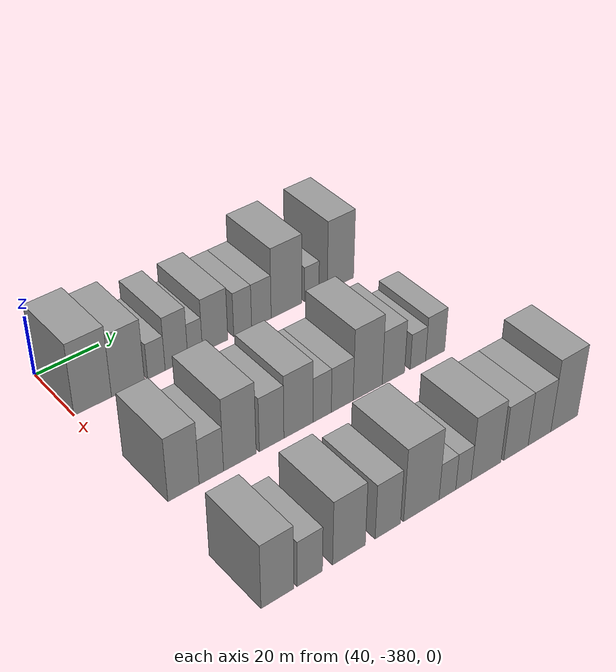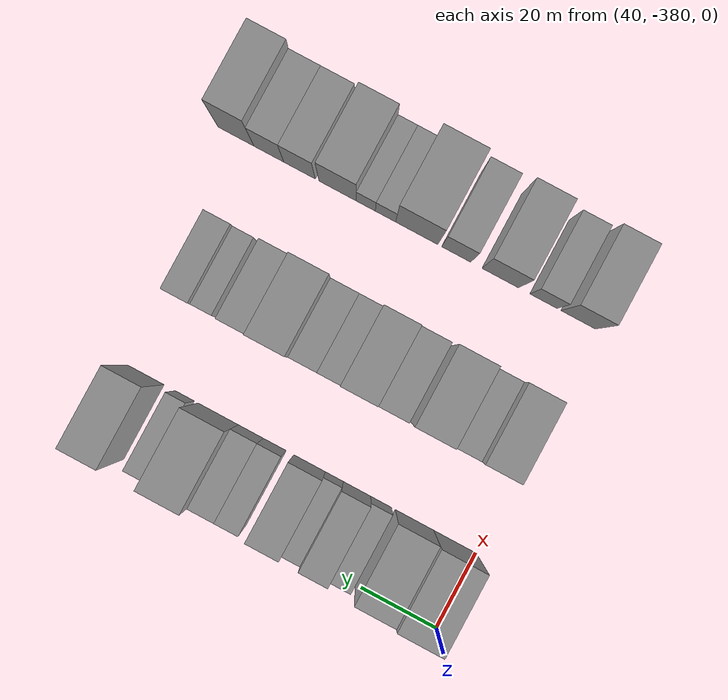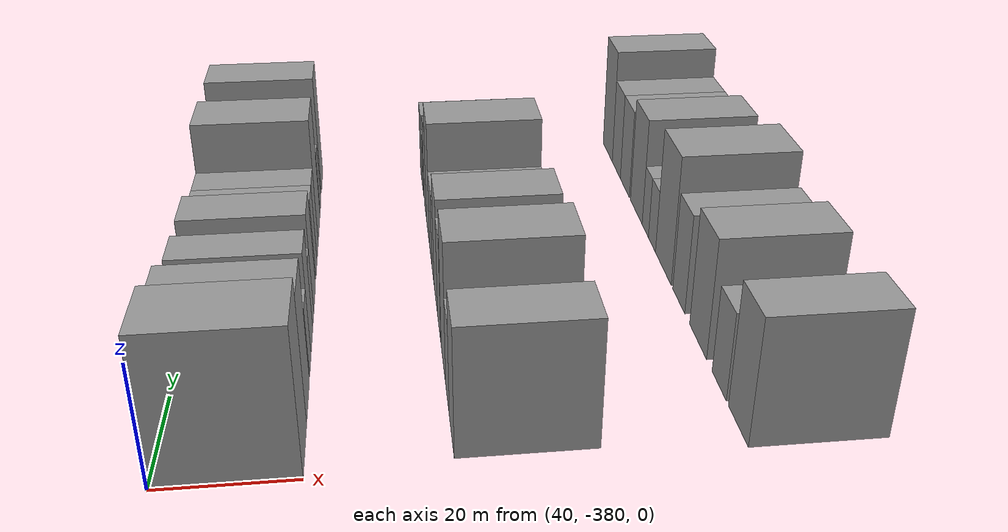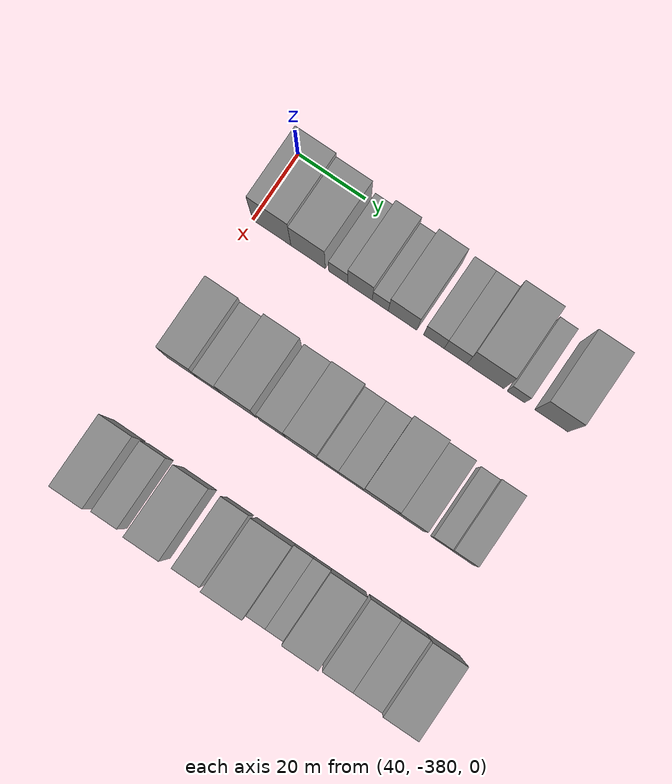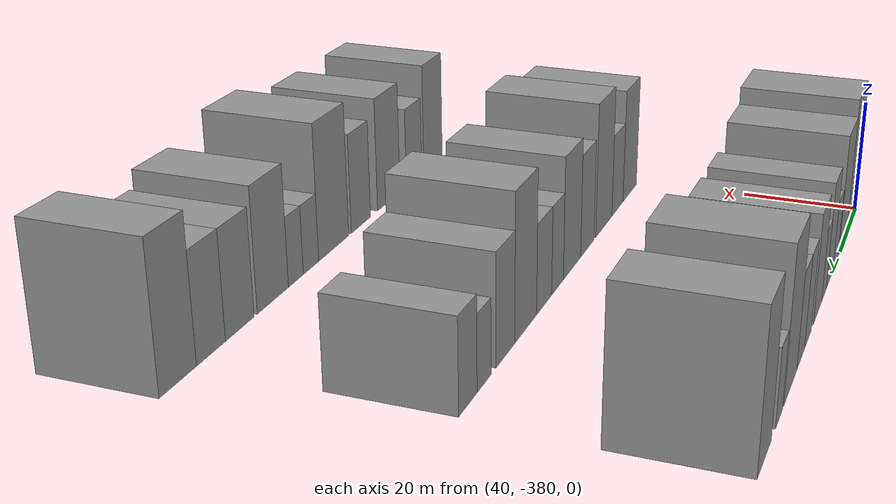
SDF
<sdf version="1.6">
 <world name="default">
  <model name="building_1">
   <static>1</static>
   <pose>50.0000 -374.2939 0 0.000000 0.000000 0.000000</pose>
   <link name="link">
    <pose>0 0 12.00 0 0 0</pose>
    <collision name="collision"><geometry><box><size>20.0000 11.4122 24.0000</size></box></geometry></collision>
    <visual name="visual">
     <cast_shadows>0</cast_shadows>
     <geometry><box><size>20.0000 11.4122 24.0000</size></box></geometry>
     <material>
      <script>
       <uri>model://grey_wall/materials/scripts</uri>
       <uri>model://grey_wall/materials/textures</uri>
       <name>vrc/grey_wall</name>
      </script>
     </material>
    </visual>
   </link>
  </model>
  <model name="building_2">
   <static>1</static>
   <pose>50.0000 -363.4568 0 0.000000 0.000000 0.000000</pose>
   <link name="link">
    <pose>0 0 10.50 0 0 0</pose>
    <collision name="collision"><geometry><box><size>20.0000 10.2619 21.0000</size></box></geometry></collision>
    <visual name="visual">
     <cast_shadows>0</cast_shadows>
     <geometry><box><size>20.0000 10.2619 21.0000</size></box></geometry>
     <material>
      <script>
       <uri>model://grey_wall/materials/scripts</uri>
       <uri>model://grey_wall/materials/textures</uri>
       <name>vrc/grey_wall</name>
      </script>
     </material>
    </visual>
   </link>
  </model>
  <model name="building_3">
   <static>1</static>
   <pose>50.0000 -354.5349 0 0.000000 0.000000 0.000000</pose>
   <link name="link">
    <pose>0 0 6.00 0 0 0</pose>
    <collision name="collision"><geometry><box><size>20.0000 5.5819 12.0000</size></box></geometry></collision>
    <visual name="visual">
     <cast_shadows>0</cast_shadows>
     <geometry><box><size>20.0000 5.5819 12.0000</size></box></geometry>
     <material>
      <script>
       <uri>model://grey_wall/materials/scripts</uri>
       <uri>model://grey_wall/materials/textures</uri>
       <name>vrc/grey_wall</name>
      </script>
     </material>
    </visual>
   </link>
  </model>
  <model name="building_4">
   <static>1</static>
   <pose>50.0000 -348.0788 0 0.000000 0.000000 0.000000</pose>
   <link name="link">
    <pose>0 0 9.00 0 0 0</pose>
    <collision name="collision"><geometry><box><size>20.0000 7.3304 18.0000</size></box></geometry></collision>
    <visual name="visual">
     <cast_shadows>0</cast_shadows>
     <geometry><box><size>20.0000 7.3304 18.0000</size></box></geometry>
     <material>
      <script>
       <uri>model://grey_wall/materials/scripts</uri>
       <uri>model://grey_wall/materials/textures</uri>
       <name>vrc/grey_wall</name>
      </script>
     </material>
    </visual>
   </link>
  </model>
  <model name="building_5">
   <static>1</static>
   <pose>50.0000 -342.0132 0 0.000000 0.000000 0.000000</pose>
   <link name="link">
    <pose>0 0 6.00 0 0 0</pose>
    <collision name="collision"><geometry><box><size>20.0000 4.8006 12.0000</size></box></geometry></collision>
    <visual name="visual">
     <cast_shadows>0</cast_shadows>
     <geometry><box><size>20.0000 4.8006 12.0000</size></box></geometry>
     <material>
      <script>
       <uri>model://grey_wall/materials/scripts</uri>
       <uri>model://grey_wall/materials/textures</uri>
       <name>vrc/grey_wall</name>
      </script>
     </material>
    </visual>
   </link>
  </model>
  <model name="building_6">
   <static>1</static>
   <pose>50.0000 -335.3827 0 0.000000 0.000000 0.000000</pose>
   <link name="link">
    <pose>0 0 9.00 0 0 0</pose>
    <collision name="collision"><geometry><box><size>20.0000 8.4605 18.0000</size></box></geometry></collision>
    <visual name="visual">
     <cast_shadows>0</cast_shadows>
     <geometry><box><size>20.0000 8.4605 18.0000</size></box></geometry>
     <material>
      <script>
       <uri>model://grey_wall/materials/scripts</uri>
       <uri>model://grey_wall/materials/textures</uri>
       <name>vrc/grey_wall</name>
      </script>
     </material>
    </visual>
   </link>
  </model>
  <model name="building_7">
   <static>1</static>
   <pose>50.0000 -326.1013 0 0.000000 0.000000 0.000000</pose>
   <link name="link">
    <pose>0 0 7.50 0 0 0</pose>
    <collision name="collision"><geometry><box><size>20.0000 6.1022 15.0000</size></box></geometry></collision>
    <visual name="visual">
     <cast_shadows>0</cast_shadows>
     <geometry><box><size>20.0000 6.1022 15.0000</size></box></geometry>
     <material>
      <script>
       <uri>model://grey_wall/materials/scripts</uri>
       <uri>model://grey_wall/materials/textures</uri>
       <name>vrc/grey_wall</name>
      </script>
     </material>
    </visual>
   </link>
  </model>
  <model name="building_8">
   <static>1</static>
   <pose>50.0000 -319.6761 0 0.000000 0.000000 0.000000</pose>
   <link name="link">
    <pose>0 0 7.50 0 0 0</pose>
    <collision name="collision"><geometry><box><size>20.0000 6.7484 15.0000</size></box></geometry></collision>
    <visual name="visual">
     <cast_shadows>0</cast_shadows>
     <geometry><box><size>20.0000 6.7484 15.0000</size></box></geometry>
     <material>
      <script>
       <uri>model://grey_wall/materials/scripts</uri>
       <uri>model://grey_wall/materials/textures</uri>
       <name>vrc/grey_wall</name>
      </script>
     </material>
    </visual>
   </link>
  </model>
  <model name="building_9">
   <static>1</static>
   <pose>50.0000 -310.8692 0 0.000000 0.000000 0.000000</pose>
   <link name="link">
    <pose>0 0 12.00 0 0 0</pose>
    <collision name="collision"><geometry><box><size>20.0000 10.8653 24.0000</size></box></geometry></collision>
    <visual name="visual">
     <cast_shadows>0</cast_shadows>
     <geometry><box><size>20.0000 10.8653 24.0000</size></box></geometry>
     <material>
      <script>
       <uri>model://grey_wall/materials/scripts</uri>
       <uri>model://grey_wall/materials/textures</uri>
       <name>vrc/grey_wall</name>
      </script>
     </material>
    </visual>
   </link>
  </model>
  <model name="building_10">
   <static>1</static>
   <pose>50.0000 -301.8621 0 0.000000 0.000000 0.000000</pose>
   <link name="link">
    <pose>0 0 6.00 0 0 0</pose>
    <collision name="collision"><geometry><box><size>20.0000 5.1489 12.0000</size></box></geometry></collision>
    <visual name="visual">
     <cast_shadows>0</cast_shadows>
     <geometry><box><size>20.0000 5.1489 12.0000</size></box></geometry>
     <material>
      <script>
       <uri>model://grey_wall/materials/scripts</uri>
       <uri>model://grey_wall/materials/textures</uri>
       <name>vrc/grey_wall</name>
      </script>
     </material>
    </visual>
   </link>
  </model>
  <model name="building_11">
   <static>1</static>
   <pose>50.0000 -291.4230 0 0.000000 0.000000 0.000000</pose>
   <link name="link">
    <pose>0 0 12.00 0 0 0</pose>
    <collision name="collision"><geometry><box><size>20.0000 9.7293 24.0000</size></box></geometry></collision>
    <visual name="visual">
     <cast_shadows>0</cast_shadows>
     <geometry><box><size>20.0000 9.7293 24.0000</size></box></geometry>
     <material>
      <script>
       <uri>model://grey_wall/materials/scripts</uri>
       <uri>model://grey_wall/materials/textures</uri>
       <name>vrc/grey_wall</name>
      </script>
     </material>
    </visual>
   </link>
  </model>
  <model name="building_87">
   <static>1</static>
   <pose>90.0000 -373.3936 0 0.000000 0.000000 0.000000</pose>
   <link name="link">
    <pose>0 0 10.50 0 0 0</pose>
    <collision name="collision"><geometry><box><size>20.0000 9.2129 21.0000</size></box></geometry></collision>
    <visual name="visual">
     <cast_shadows>0</cast_shadows>
     <geometry><box><size>20.0000 9.2129 21.0000</size></box></geometry>
     <material>
      <script>
       <uri>model://grey_wall/materials/scripts</uri>
       <uri>model://grey_wall/materials/textures</uri>
       <name>vrc/grey_wall</name>
      </script>
     </material>
    </visual>
   </link>
  </model>
  <model name="building_88">
   <static>1</static>
   <pose>90.0000 -365.1142 0 0.000000 0.000000 0.000000</pose>
   <link name="link">
    <pose>0 0 7.50 0 0 0</pose>
    <collision name="collision"><geometry><box><size>20.0000 7.3459 15.0000</size></box></geometry></collision>
    <visual name="visual">
     <cast_shadows>0</cast_shadows>
     <geometry><box><size>20.0000 7.3459 15.0000</size></box></geometry>
     <material>
      <script>
       <uri>model://grey_wall/materials/scripts</uri>
       <uri>model://grey_wall/materials/textures</uri>
       <name>vrc/grey_wall</name>
      </script>
     </material>
    </visual>
   </link>
  </model>
  <model name="building_89">
   <static>1</static>
   <pose>90.0000 -356.4322 0 0.000000 0.000000 0.000000</pose>
   <link name="link">
    <pose>0 0 12.00 0 0 0</pose>
    <collision name="collision"><geometry><box><size>20.0000 10.0182 24.0000</size></box></geometry></collision>
    <visual name="visual">
     <cast_shadows>0</cast_shadows>
     <geometry><box><size>20.0000 10.0182 24.0000</size></box></geometry>
     <material>
      <script>
       <uri>model://grey_wall/materials/scripts</uri>
       <uri>model://grey_wall/materials/textures</uri>
       <name>vrc/grey_wall</name>
      </script>
     </material>
    </visual>
   </link>
  </model>
  <model name="building_90">
   <static>1</static>
   <pose>90.0000 -346.5518 0 0.000000 0.000000 0.000000</pose>
   <link name="link">
    <pose>0 0 9.00 0 0 0</pose>
    <collision name="collision"><geometry><box><size>20.0000 7.7427 18.0000</size></box></geometry></collision>
    <visual name="visual">
     <cast_shadows>0</cast_shadows>
     <geometry><box><size>20.0000 7.7427 18.0000</size></box></geometry>
     <material>
      <script>
       <uri>model://grey_wall/materials/scripts</uri>
       <uri>model://grey_wall/materials/textures</uri>
       <name>vrc/grey_wall</name>
      </script>
     </material>
    </visual>
   </link>
  </model>
  <model name="building_91">
   <static>1</static>
   <pose>90.0000 -338.0064 0 0.000000 0.000000 0.000000</pose>
   <link name="link">
    <pose>0 0 10.50 0 0 0</pose>
    <collision name="collision"><geometry><box><size>20.0000 9.3481 21.0000</size></box></geometry></collision>
    <visual name="visual">
     <cast_shadows>0</cast_shadows>
     <geometry><box><size>20.0000 9.3481 21.0000</size></box></geometry>
     <material>
      <script>
       <uri>model://grey_wall/materials/scripts</uri>
       <uri>model://grey_wall/materials/textures</uri>
       <name>vrc/grey_wall</name>
      </script>
     </material>
    </visual>
   </link>
  </model>
  <model name="building_92">
   <static>1</static>
   <pose>90.0000 -330.3028 0 0.000000 0.000000 0.000000</pose>
   <link name="link">
    <pose>0 0 7.50 0 0 0</pose>
    <collision name="collision"><geometry><box><size>20.0000 6.0591 15.0000</size></box></geometry></collision>
    <visual name="visual">
     <cast_shadows>0</cast_shadows>
     <geometry><box><size>20.0000 6.0591 15.0000</size></box></geometry>
     <material>
      <script>
       <uri>model://grey_wall/materials/scripts</uri>
       <uri>model://grey_wall/materials/textures</uri>
       <name>vrc/grey_wall</name>
      </script>
     </material>
    </visual>
   </link>
  </model>
  <model name="building_93">
   <static>1</static>
   <pose>90.0000 -323.6215 0 0.000000 0.000000 0.000000</pose>
   <link name="link">
    <pose>0 0 7.50 0 0 0</pose>
    <collision name="collision"><geometry><box><size>20.0000 7.3035 15.0000</size></box></geometry></collision>
    <visual name="visual">
     <cast_shadows>0</cast_shadows>
     <geometry><box><size>20.0000 7.3035 15.0000</size></box></geometry>
     <material>
      <script>
       <uri>model://grey_wall/materials/scripts</uri>
       <uri>model://grey_wall/materials/textures</uri>
       <name>vrc/grey_wall</name>
      </script>
     </material>
    </visual>
   </link>
  </model>
  <model name="building_94">
   <static>1</static>
   <pose>90.0000 -314.9999 0 0.000000 0.000000 0.000000</pose>
   <link name="link">
    <pose>0 0 12.00 0 0 0</pose>
    <collision name="collision"><geometry><box><size>20.0000 9.9396 24.0000</size></box></geometry></collision>
    <visual name="visual">
     <cast_shadows>0</cast_shadows>
     <geometry><box><size>20.0000 9.9396 24.0000</size></box></geometry>
     <material>
      <script>
       <uri>model://grey_wall/materials/scripts</uri>
       <uri>model://grey_wall/materials/textures</uri>
       <name>vrc/grey_wall</name>
      </script>
     </material>
    </visual>
   </link>
  </model>
  <model name="building_95">
   <static>1</static>
   <pose>90.0000 -306.1053 0 0.000000 0.000000 0.000000</pose>
   <link name="link">
    <pose>0 0 9.00 0 0 0</pose>
    <collision name="collision"><geometry><box><size>20.0000 7.8495 18.0000</size></box></geometry></collision>
    <visual name="visual">
     <cast_shadows>0</cast_shadows>
     <geometry><box><size>20.0000 7.8495 18.0000</size></box></geometry>
     <material>
      <script>
       <uri>model://grey_wall/materials/scripts</uri>
       <uri>model://grey_wall/materials/textures</uri>
       <name>vrc/grey_wall</name>
      </script>
     </material>
    </visual>
   </link>
  </model>
  <model name="building_96">
   <static>1</static>
   <pose>90.0000 -297.4326 0 0.000000 0.000000 0.000000</pose>
   <link name="link">
    <pose>0 0 6.00 0 0 0</pose>
    <collision name="collision"><geometry><box><size>20.0000 5.4960 12.0000</size></box></geometry></collision>
    <visual name="visual">
     <cast_shadows>0</cast_shadows>
     <geometry><box><size>20.0000 5.4960 12.0000</size></box></geometry>
     <material>
      <script>
       <uri>model://grey_wall/materials/scripts</uri>
       <uri>model://grey_wall/materials/textures</uri>
       <name>vrc/grey_wall</name>
      </script>
     </material>
    </visual>
   </link>
  </model>
  <model name="building_97">
   <static>1</static>
   <pose>90.0000 -291.2237 0 0.000000 0.000000 0.000000</pose>
   <link name="link">
    <pose>0 0 7.50 0 0 0</pose>
    <collision name="collision"><geometry><box><size>20.0000 6.9217 15.0000</size></box></geometry></collision>
    <visual name="visual">
     <cast_shadows>0</cast_shadows>
     <geometry><box><size>20.0000 6.9217 15.0000</size></box></geometry>
     <material>
      <script>
       <uri>model://grey_wall/materials/scripts</uri>
       <uri>model://grey_wall/materials/textures</uri>
       <name>vrc/grey_wall</name>
      </script>
     </material>
    </visual>
   </link>
  </model>
  <model name="building_175">
   <static>1</static>
   <pose>130.0000 -375.3500 0 0.000000 0.000000 0.000000</pose>
   <link name="link">
    <pose>0 0 10.50 0 0 0</pose>
    <collision name="collision"><geometry><box><size>20.0000 9.3001 21.0000</size></box></geometry></collision>
    <visual name="visual">
     <cast_shadows>0</cast_shadows>
     <geometry><box><size>20.0000 9.3001 21.0000</size></box></geometry>
     <material>
      <script>
       <uri>model://grey_wall/materials/scripts</uri>
       <uri>model://grey_wall/materials/textures</uri>
       <name>vrc/grey_wall</name>
      </script>
     </material>
    </visual>
   </link>
  </model>
  <model name="building_176">
   <static>1</static>
   <pose>130.0000 -366.0331 0 0.000000 0.000000 0.000000</pose>
   <link name="link">
    <pose>0 0 7.50 0 0 0</pose>
    <collision name="collision"><geometry><box><size>20.0000 7.3336 15.0000</size></box></geometry></collision>
    <visual name="visual">
     <cast_shadows>0</cast_shadows>
     <geometry><box><size>20.0000 7.3336 15.0000</size></box></geometry>
     <material>
      <script>
       <uri>model://grey_wall/materials/scripts</uri>
       <uri>model://grey_wall/materials/textures</uri>
       <name>vrc/grey_wall</name>
      </script>
     </material>
    </visual>
   </link>
  </model>
  <model name="building_177">
   <static>1</static>
   <pose>130.0000 -354.4365 0 0.000000 0.000000 0.000000</pose>
   <link name="link">
    <pose>0 0 10.50 0 0 0</pose>
    <collision name="collision"><geometry><box><size>20.0000 9.8598 21.0000</size></box></geometry></collision>
    <visual name="visual">
     <cast_shadows>0</cast_shadows>
     <geometry><box><size>20.0000 9.8598 21.0000</size></box></geometry>
     <material>
      <script>
       <uri>model://grey_wall/materials/scripts</uri>
       <uri>model://grey_wall/materials/textures</uri>
       <name>vrc/grey_wall</name>
      </script>
     </material>
    </visual>
   </link>
  </model>
  <model name="building_178">
   <static>1</static>
   <pose>130.0000 -342.5646 0 0.000000 0.000000 0.000000</pose>
   <link name="link">
    <pose>0 0 9.00 0 0 0</pose>
    <collision name="collision"><geometry><box><size>20.0000 7.8840 18.0000</size></box></geometry></collision>
    <visual name="visual">
     <cast_shadows>0</cast_shadows>
     <geometry><box><size>20.0000 7.8840 18.0000</size></box></geometry>
     <material>
      <script>
       <uri>model://grey_wall/materials/scripts</uri>
       <uri>model://grey_wall/materials/textures</uri>
       <name>vrc/grey_wall</name>
      </script>
     </material>
    </visual>
   </link>
  </model>
  <model name="building_179">
   <static>1</static>
   <pose>130.0000 -331.9366 0 0.000000 0.000000 0.000000</pose>
   <link name="link">
    <pose>0 0 12.00 0 0 0</pose>
    <collision name="collision"><geometry><box><size>20.0000 11.3719 24.0000</size></box></geometry></collision>
    <visual name="visual">
     <cast_shadows>0</cast_shadows>
     <geometry><box><size>20.0000 11.3719 24.0000</size></box></geometry>
     <material>
      <script>
       <uri>model://grey_wall/materials/scripts</uri>
       <uri>model://grey_wall/materials/textures</uri>
       <name>vrc/grey_wall</name>
      </script>
     </material>
    </visual>
   </link>
  </model>
  <model name="building_180">
   <static>1</static>
   <pose>130.0000 -323.5129 0 0.000000 0.000000 0.000000</pose>
   <link name="link">
    <pose>0 0 6.00 0 0 0</pose>
    <collision name="collision"><geometry><box><size>20.0000 5.4754 12.0000</size></box></geometry></collision>
    <visual name="visual">
     <cast_shadows>0</cast_shadows>
     <geometry><box><size>20.0000 5.4754 12.0000</size></box></geometry>
     <material>
      <script>
       <uri>model://grey_wall/materials/scripts</uri>
       <uri>model://grey_wall/materials/textures</uri>
       <name>vrc/grey_wall</name>
      </script>
     </material>
    </visual>
   </link>
  </model>
  <model name="building_181">
   <static>1</static>
   <pose>130.0000 -318.2276 0 0.000000 0.000000 0.000000</pose>
   <link name="link">
    <pose>0 0 6.00 0 0 0</pose>
    <collision name="collision"><geometry><box><size>20.0000 5.0951 12.0000</size></box></geometry></collision>
    <visual name="visual">
     <cast_shadows>0</cast_shadows>
     <geometry><box><size>20.0000 5.0951 12.0000</size></box></geometry>
     <material>
      <script>
       <uri>model://grey_wall/materials/scripts</uri>
       <uri>model://grey_wall/materials/textures</uri>
       <name>vrc/grey_wall</name>
      </script>
     </material>
    </visual>
   </link>
  </model>
  <model name="building_182">
   <static>1</static>
   <pose>130.0000 -310.6233 0 0.000000 0.000000 0.000000</pose>
   <link name="link">
    <pose>0 0 10.50 0 0 0</pose>
    <collision name="collision"><geometry><box><size>20.0000 10.1136 21.0000</size></box></geometry></collision>
    <visual name="visual">
     <cast_shadows>0</cast_shadows>
     <geometry><box><size>20.0000 10.1136 21.0000</size></box></geometry>
     <material>
      <script>
       <uri>model://grey_wall/materials/scripts</uri>
       <uri>model://grey_wall/materials/textures</uri>
       <name>vrc/grey_wall</name>
      </script>
     </material>
    </visual>
   </link>
  </model>
  <model name="building_183">
   <static>1</static>
   <pose>130.0000 -300.3065 0 0.000000 0.000000 0.000000</pose>
   <link name="link">
    <pose>0 0 9.00 0 0 0</pose>
    <collision name="collision"><geometry><box><size>20.0000 8.5201 18.0000</size></box></geometry></collision>
    <visual name="visual">
     <cast_shadows>0</cast_shadows>
     <geometry><box><size>20.0000 8.5201 18.0000</size></box></geometry>
     <material>
      <script>
       <uri>model://grey_wall/materials/scripts</uri>
       <uri>model://grey_wall/materials/textures</uri>
       <name>vrc/grey_wall</name>
      </script>
     </material>
    </visual>
   </link>
  </model>
  <model name="building_184">
   <static>1</static>
   <pose>130.0000 -292.0009 0 0.000000 0.000000 0.000000</pose>
   <link name="link">
    <pose>0 0 9.00 0 0 0</pose>
    <collision name="collision"><geometry><box><size>20.0000 8.0911 18.0000</size></box></geometry></collision>
    <visual name="visual">
     <cast_shadows>0</cast_shadows>
     <geometry><box><size>20.0000 8.0911 18.0000</size></box></geometry>
     <material>
      <script>
       <uri>model://grey_wall/materials/scripts</uri>
       <uri>model://grey_wall/materials/textures</uri>
       <name>vrc/grey_wall</name>
      </script>
     </material>
    </visual>
   </link>
  </model>
  <model name="building_185">
   <static>1</static>
   <pose>130.0000 -283.0986 0 0.000000 0.000000 0.000000</pose>
   <link name="link">
    <pose>0 0 12.00 0 0 0</pose>
    <collision name="collision"><geometry><box><size>20.0000 9.7133 24.0000</size></box></geometry></collision>
    <visual name="visual">
     <cast_shadows>0</cast_shadows>
     <geometry><box><size>20.0000 9.7133 24.0000</size></box></geometry>
     <material>
      <script>
       <uri>model://grey_wall/materials/scripts</uri>
       <uri>model://grey_wall/materials/textures</uri>
       <name>vrc/grey_wall</name>
      </script>
     </material>
    </visual>
   </link>
  </model>
 </world>
</sdf>
